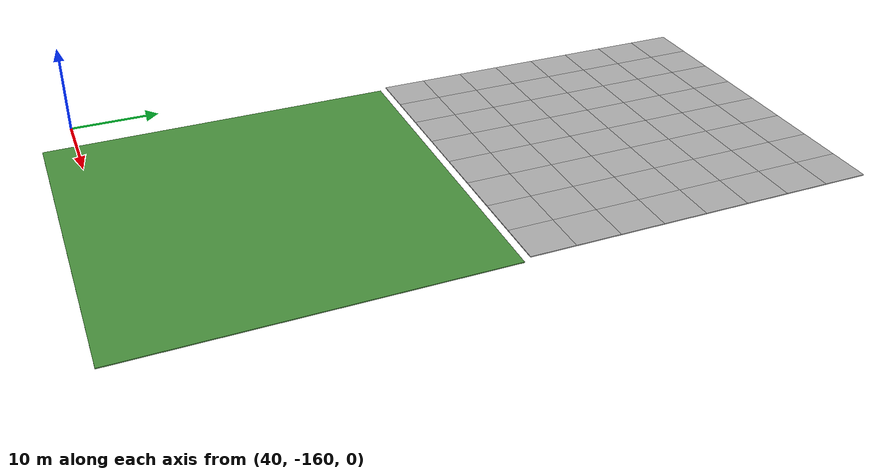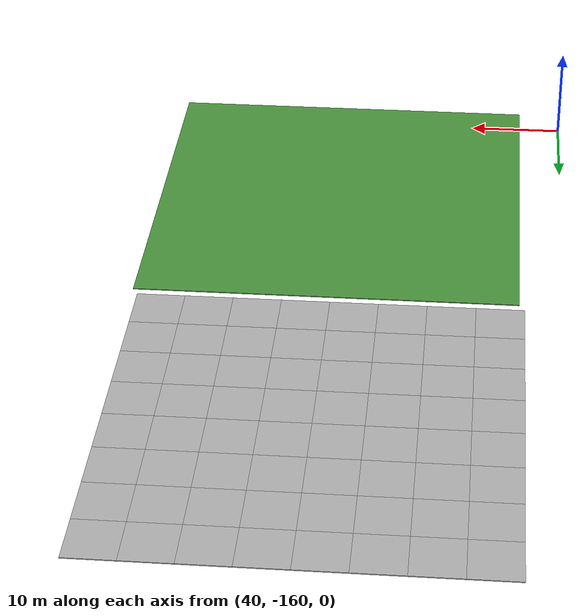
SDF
<sdf version="1.7">
 <world name="default">
  <model name="mud_plane_40x40_3">
   <model name="mud_plane_20x20">
    <model name="mud_plane">
     <static>1</static>
     <link name="link">
      <collision name="collision"><geometry><box><size>10 10 0.1</size></box></geometry></collision>
      <visual name="visual_1">
       <pose>-2.5 2.5 -0.05 0 -0 0</pose>
       <cast_shadows>0</cast_shadows>
       <geometry><box><size>5 5 0.1</size></box></geometry>
       <material>
        <script>
         <uri>model://mud_plane/materials/scripts</uri>
         <uri>model://mud_plane/materials/textures</uri>
         <name>vrc/mud</name>
        </script>
       </material>
      </visual>
      <visual name="visual_2">
       <pose>2.5 2.5 -0.05 0 -0 0</pose>
       <cast_shadows>0</cast_shadows>
       <geometry><box><size>5 5 0.1</size></box></geometry>
       <material>
        <script>
         <uri>model://mud_plane/materials/scripts</uri>
         <uri>model://mud_plane/materials/textures</uri>
         <name>vrc/mud</name>
        </script>
       </material>
      </visual>
      <visual name="visual_3">
       <pose>2.5 -2.5 -0.05 0 -0 0</pose>
       <cast_shadows>0</cast_shadows>
       <geometry><box><size>5 5 0.1</size></box></geometry>
       <material>
        <script>
         <uri>model://mud_plane/materials/scripts</uri>
         <uri>model://mud_plane/materials/textures</uri>
         <name>vrc/mud</name>
        </script>
       </material>
      </visual>
      <visual name="visual_4">
       <pose>-2.5 -2.5 -0.05 0 -0 0</pose>
       <cast_shadows>0</cast_shadows>
       <geometry><box><size>5 5 0.1</size></box></geometry>
       <material>
        <script>
         <uri>model://mud_plane/materials/scripts</uri>
         <uri>model://mud_plane/materials/textures</uri>
         <name>vrc/mud</name>
        </script>
       </material>
      </visual>
     </link>
     <pose>-4.99986 -4.99991 0 0 -0 0</pose>
    </model>
    <model name="mud_plane_0">
     <static>1</static>
     <link name="link">
      <collision name="collision"><geometry><box><size>10 10 0.1</size></box></geometry></collision>
      <visual name="visual_1">
       <pose>-2.5 2.5 -0.05 0 -0 0</pose>
       <cast_shadows>0</cast_shadows>
       <geometry><box><size>5 5 0.1</size></box></geometry>
       <material>
        <script>
         <uri>model://mud_plane/materials/scripts</uri>
         <uri>model://mud_plane/materials/textures</uri>
         <name>vrc/mud</name>
        </script>
       </material>
      </visual>
      <visual name="visual_2">
       <pose>2.5 2.5 -0.05 0 -0 0</pose>
       <cast_shadows>0</cast_shadows>
       <geometry><box><size>5 5 0.1</size></box></geometry>
       <material>
        <script>
         <uri>model://mud_plane/materials/scripts</uri>
         <uri>model://mud_plane/materials/textures</uri>
         <name>vrc/mud</name>
        </script>
       </material>
      </visual>
      <visual name="visual_3">
       <pose>2.5 -2.5 -0.05 0 -0 0</pose>
       <cast_shadows>0</cast_shadows>
       <geometry><box><size>5 5 0.1</size></box></geometry>
       <material>
        <script>
         <uri>model://mud_plane/materials/scripts</uri>
         <uri>model://mud_plane/materials/textures</uri>
         <name>vrc/mud</name>
        </script>
       </material>
      </visual>
      <visual name="visual_4">
       <pose>-2.5 -2.5 -0.05 0 -0 0</pose>
       <cast_shadows>0</cast_shadows>
       <geometry><box><size>5 5 0.1</size></box></geometry>
       <material>
        <script>
         <uri>model://mud_plane/materials/scripts</uri>
         <uri>model://mud_plane/materials/textures</uri>
         <name>vrc/mud</name>
        </script>
       </material>
      </visual>
     </link>
     <pose>-4.99946 4.99954 0 0 -0 0</pose>
    </model>
    <model name="mud_plane_1">
     <static>1</static>
     <link name="link">
      <collision name="collision"><geometry><box><size>10 10 0.1</size></box></geometry></collision>
      <visual name="visual_1">
       <pose>-2.5 2.5 -0.05 0 -0 0</pose>
       <cast_shadows>0</cast_shadows>
       <geometry><box><size>5 5 0.1</size></box></geometry>
       <material>
        <script>
         <uri>model://mud_plane/materials/scripts</uri>
         <uri>model://mud_plane/materials/textures</uri>
         <name>vrc/mud</name>
        </script>
       </material>
      </visual>
      <visual name="visual_2">
       <pose>2.5 2.5 -0.05 0 -0 0</pose>
       <cast_shadows>0</cast_shadows>
       <geometry><box><size>5 5 0.1</size></box></geometry>
       <material>
        <script>
         <uri>model://mud_plane/materials/scripts</uri>
         <uri>model://mud_plane/materials/textures</uri>
         <name>vrc/mud</name>
        </script>
       </material>
      </visual>
      <visual name="visual_3">
       <pose>2.5 -2.5 -0.05 0 -0 0</pose>
       <cast_shadows>0</cast_shadows>
       <geometry><box><size>5 5 0.1</size></box></geometry>
       <material>
        <script>
         <uri>model://mud_plane/materials/scripts</uri>
         <uri>model://mud_plane/materials/textures</uri>
         <name>vrc/mud</name>
        </script>
       </material>
      </visual>
      <visual name="visual_4">
       <pose>-2.5 -2.5 -0.05 0 -0 0</pose>
       <cast_shadows>0</cast_shadows>
       <geometry><box><size>5 5 0.1</size></box></geometry>
       <material>
        <script>
         <uri>model://mud_plane/materials/scripts</uri>
         <uri>model://mud_plane/materials/textures</uri>
         <name>vrc/mud</name>
        </script>
       </material>
      </visual>
     </link>
     <pose>4.99964 -4.99949 0 0 -0 0</pose>
    </model>
    <model name="mud_plane_2">
     <static>1</static>
     <link name="link">
      <collision name="collision"><geometry><box><size>10 10 0.1</size></box></geometry></collision>
      <visual name="visual_1">
       <pose>-2.5 2.5 -0.05 0 -0 0</pose>
       <cast_shadows>0</cast_shadows>
       <geometry><box><size>5 5 0.1</size></box></geometry>
       <material>
        <script>
         <uri>model://mud_plane/materials/scripts</uri>
         <uri>model://mud_plane/materials/textures</uri>
         <name>vrc/mud</name>
        </script>
       </material>
      </visual>
      <visual name="visual_2">
       <pose>2.5 2.5 -0.05 0 -0 0</pose>
       <cast_shadows>0</cast_shadows>
       <geometry><box><size>5 5 0.1</size></box></geometry>
       <material>
        <script>
         <uri>model://mud_plane/materials/scripts</uri>
         <uri>model://mud_plane/materials/textures</uri>
         <name>vrc/mud</name>
        </script>
       </material>
      </visual>
      <visual name="visual_3">
       <pose>2.5 -2.5 -0.05 0 -0 0</pose>
       <cast_shadows>0</cast_shadows>
       <geometry><box><size>5 5 0.1</size></box></geometry>
       <material>
        <script>
         <uri>model://mud_plane/materials/scripts</uri>
         <uri>model://mud_plane/materials/textures</uri>
         <name>vrc/mud</name>
        </script>
       </material>
      </visual>
      <visual name="visual_4">
       <pose>-2.5 -2.5 -0.05 0 -0 0</pose>
       <cast_shadows>0</cast_shadows>
       <geometry><box><size>5 5 0.1</size></box></geometry>
       <material>
        <script>
         <uri>model://mud_plane/materials/scripts</uri>
         <uri>model://mud_plane/materials/textures</uri>
         <name>vrc/mud</name>
        </script>
       </material>
      </visual>
     </link>
     <pose>4.99967 4.99986 0 0 -0 0</pose>
    </model>
    <static>0</static>
    <pose>-9.99895 9.99843 0 0 -0 0</pose>
   </model>
   <model name="mud_plane_20x20_0">
    <model name="mud_plane">
     <static>1</static>
     <link name="link">
      <collision name="collision"><geometry><box><size>10 10 0.1</size></box></geometry></collision>
      <visual name="visual_1">
       <pose>-2.5 2.5 -0.05 0 -0 0</pose>
       <cast_shadows>0</cast_shadows>
       <geometry><box><size>5 5 0.1</size></box></geometry>
       <material>
        <script>
         <uri>model://mud_plane/materials/scripts</uri>
         <uri>model://mud_plane/materials/textures</uri>
         <name>vrc/mud</name>
        </script>
       </material>
      </visual>
      <visual name="visual_2">
       <pose>2.5 2.5 -0.05 0 -0 0</pose>
       <cast_shadows>0</cast_shadows>
       <geometry><box><size>5 5 0.1</size></box></geometry>
       <material>
        <script>
         <uri>model://mud_plane/materials/scripts</uri>
         <uri>model://mud_plane/materials/textures</uri>
         <name>vrc/mud</name>
        </script>
       </material>
      </visual>
      <visual name="visual_3">
       <pose>2.5 -2.5 -0.05 0 -0 0</pose>
       <cast_shadows>0</cast_shadows>
       <geometry><box><size>5 5 0.1</size></box></geometry>
       <material>
        <script>
         <uri>model://mud_plane/materials/scripts</uri>
         <uri>model://mud_plane/materials/textures</uri>
         <name>vrc/mud</name>
        </script>
       </material>
      </visual>
      <visual name="visual_4">
       <pose>-2.5 -2.5 -0.05 0 -0 0</pose>
       <cast_shadows>0</cast_shadows>
       <geometry><box><size>5 5 0.1</size></box></geometry>
       <material>
        <script>
         <uri>model://mud_plane/materials/scripts</uri>
         <uri>model://mud_plane/materials/textures</uri>
         <name>vrc/mud</name>
        </script>
       </material>
      </visual>
     </link>
     <pose>-4.99986 -4.99991 0 0 -0 0</pose>
    </model>
    <model name="mud_plane_0">
     <static>1</static>
     <link name="link">
      <collision name="collision"><geometry><box><size>10 10 0.1</size></box></geometry></collision>
      <visual name="visual_1">
       <pose>-2.5 2.5 -0.05 0 -0 0</pose>
       <cast_shadows>0</cast_shadows>
       <geometry><box><size>5 5 0.1</size></box></geometry>
       <material>
        <script>
         <uri>model://mud_plane/materials/scripts</uri>
         <uri>model://mud_plane/materials/textures</uri>
         <name>vrc/mud</name>
        </script>
       </material>
      </visual>
      <visual name="visual_2">
       <pose>2.5 2.5 -0.05 0 -0 0</pose>
       <cast_shadows>0</cast_shadows>
       <geometry><box><size>5 5 0.1</size></box></geometry>
       <material>
        <script>
         <uri>model://mud_plane/materials/scripts</uri>
         <uri>model://mud_plane/materials/textures</uri>
         <name>vrc/mud</name>
        </script>
       </material>
      </visual>
      <visual name="visual_3">
       <pose>2.5 -2.5 -0.05 0 -0 0</pose>
       <cast_shadows>0</cast_shadows>
       <geometry><box><size>5 5 0.1</size></box></geometry>
       <material>
        <script>
         <uri>model://mud_plane/materials/scripts</uri>
         <uri>model://mud_plane/materials/textures</uri>
         <name>vrc/mud</name>
        </script>
       </material>
      </visual>
      <visual name="visual_4">
       <pose>-2.5 -2.5 -0.05 0 -0 0</pose>
       <cast_shadows>0</cast_shadows>
       <geometry><box><size>5 5 0.1</size></box></geometry>
       <material>
        <script>
         <uri>model://mud_plane/materials/scripts</uri>
         <uri>model://mud_plane/materials/textures</uri>
         <name>vrc/mud</name>
        </script>
       </material>
      </visual>
     </link>
     <pose>-4.99946 4.99954 0 0 -0 0</pose>
    </model>
    <model name="mud_plane_1">
     <static>1</static>
     <link name="link">
      <collision name="collision"><geometry><box><size>10 10 0.1</size></box></geometry></collision>
      <visual name="visual_1">
       <pose>-2.5 2.5 -0.05 0 -0 0</pose>
       <cast_shadows>0</cast_shadows>
       <geometry><box><size>5 5 0.1</size></box></geometry>
       <material>
        <script>
         <uri>model://mud_plane/materials/scripts</uri>
         <uri>model://mud_plane/materials/textures</uri>
         <name>vrc/mud</name>
        </script>
       </material>
      </visual>
      <visual name="visual_2">
       <pose>2.5 2.5 -0.05 0 -0 0</pose>
       <cast_shadows>0</cast_shadows>
       <geometry><box><size>5 5 0.1</size></box></geometry>
       <material>
        <script>
         <uri>model://mud_plane/materials/scripts</uri>
         <uri>model://mud_plane/materials/textures</uri>
         <name>vrc/mud</name>
        </script>
       </material>
      </visual>
      <visual name="visual_3">
       <pose>2.5 -2.5 -0.05 0 -0 0</pose>
       <cast_shadows>0</cast_shadows>
       <geometry><box><size>5 5 0.1</size></box></geometry>
       <material>
        <script>
         <uri>model://mud_plane/materials/scripts</uri>
         <uri>model://mud_plane/materials/textures</uri>
         <name>vrc/mud</name>
        </script>
       </material>
      </visual>
      <visual name="visual_4">
       <pose>-2.5 -2.5 -0.05 0 -0 0</pose>
       <cast_shadows>0</cast_shadows>
       <geometry><box><size>5 5 0.1</size></box></geometry>
       <material>
        <script>
         <uri>model://mud_plane/materials/scripts</uri>
         <uri>model://mud_plane/materials/textures</uri>
         <name>vrc/mud</name>
        </script>
       </material>
      </visual>
     </link>
     <pose>4.99964 -4.99949 0 0 -0 0</pose>
    </model>
    <model name="mud_plane_2">
     <static>1</static>
     <link name="link">
      <collision name="collision"><geometry><box><size>10 10 0.1</size></box></geometry></collision>
      <visual name="visual_1">
       <pose>-2.5 2.5 -0.05 0 -0 0</pose>
       <cast_shadows>0</cast_shadows>
       <geometry><box><size>5 5 0.1</size></box></geometry>
       <material>
        <script>
         <uri>model://mud_plane/materials/scripts</uri>
         <uri>model://mud_plane/materials/textures</uri>
         <name>vrc/mud</name>
        </script>
       </material>
      </visual>
      <visual name="visual_2">
       <pose>2.5 2.5 -0.05 0 -0 0</pose>
       <cast_shadows>0</cast_shadows>
       <geometry><box><size>5 5 0.1</size></box></geometry>
       <material>
        <script>
         <uri>model://mud_plane/materials/scripts</uri>
         <uri>model://mud_plane/materials/textures</uri>
         <name>vrc/mud</name>
        </script>
       </material>
      </visual>
      <visual name="visual_3">
       <pose>2.5 -2.5 -0.05 0 -0 0</pose>
       <cast_shadows>0</cast_shadows>
       <geometry><box><size>5 5 0.1</size></box></geometry>
       <material>
        <script>
         <uri>model://mud_plane/materials/scripts</uri>
         <uri>model://mud_plane/materials/textures</uri>
         <name>vrc/mud</name>
        </script>
       </material>
      </visual>
      <visual name="visual_4">
       <pose>-2.5 -2.5 -0.05 0 -0 0</pose>
       <cast_shadows>0</cast_shadows>
       <geometry><box><size>5 5 0.1</size></box></geometry>
       <material>
        <script>
         <uri>model://mud_plane/materials/scripts</uri>
         <uri>model://mud_plane/materials/textures</uri>
         <name>vrc/mud</name>
        </script>
       </material>
      </visual>
     </link>
     <pose>4.99967 4.99986 0 0 -0 0</pose>
    </model>
    <static>0</static>
    <pose>9.99933 9.9997 0 0 -0 0</pose>
   </model>
   <model name="mud_plane_20x20_1">
    <model name="mud_plane">
     <static>1</static>
     <link name="link">
      <collision name="collision"><geometry><box><size>10 10 0.1</size></box></geometry></collision>
      <visual name="visual_1">
       <pose>-2.5 2.5 -0.05 0 -0 0</pose>
       <cast_shadows>0</cast_shadows>
       <geometry><box><size>5 5 0.1</size></box></geometry>
       <material>
        <script>
         <uri>model://mud_plane/materials/scripts</uri>
         <uri>model://mud_plane/materials/textures</uri>
         <name>vrc/mud</name>
        </script>
       </material>
      </visual>
      <visual name="visual_2">
       <pose>2.5 2.5 -0.05 0 -0 0</pose>
       <cast_shadows>0</cast_shadows>
       <geometry><box><size>5 5 0.1</size></box></geometry>
       <material>
        <script>
         <uri>model://mud_plane/materials/scripts</uri>
         <uri>model://mud_plane/materials/textures</uri>
         <name>vrc/mud</name>
        </script>
       </material>
      </visual>
      <visual name="visual_3">
       <pose>2.5 -2.5 -0.05 0 -0 0</pose>
       <cast_shadows>0</cast_shadows>
       <geometry><box><size>5 5 0.1</size></box></geometry>
       <material>
        <script>
         <uri>model://mud_plane/materials/scripts</uri>
         <uri>model://mud_plane/materials/textures</uri>
         <name>vrc/mud</name>
        </script>
       </material>
      </visual>
      <visual name="visual_4">
       <pose>-2.5 -2.5 -0.05 0 -0 0</pose>
       <cast_shadows>0</cast_shadows>
       <geometry><box><size>5 5 0.1</size></box></geometry>
       <material>
        <script>
         <uri>model://mud_plane/materials/scripts</uri>
         <uri>model://mud_plane/materials/textures</uri>
         <name>vrc/mud</name>
        </script>
       </material>
      </visual>
     </link>
     <pose>-4.99986 -4.99991 0 0 -0 0</pose>
    </model>
    <model name="mud_plane_0">
     <static>1</static>
     <link name="link">
      <collision name="collision"><geometry><box><size>10 10 0.1</size></box></geometry></collision>
      <visual name="visual_1">
       <pose>-2.5 2.5 -0.05 0 -0 0</pose>
       <cast_shadows>0</cast_shadows>
       <geometry><box><size>5 5 0.1</size></box></geometry>
       <material>
        <script>
         <uri>model://mud_plane/materials/scripts</uri>
         <uri>model://mud_plane/materials/textures</uri>
         <name>vrc/mud</name>
        </script>
       </material>
      </visual>
      <visual name="visual_2">
       <pose>2.5 2.5 -0.05 0 -0 0</pose>
       <cast_shadows>0</cast_shadows>
       <geometry><box><size>5 5 0.1</size></box></geometry>
       <material>
        <script>
         <uri>model://mud_plane/materials/scripts</uri>
         <uri>model://mud_plane/materials/textures</uri>
         <name>vrc/mud</name>
        </script>
       </material>
      </visual>
      <visual name="visual_3">
       <pose>2.5 -2.5 -0.05 0 -0 0</pose>
       <cast_shadows>0</cast_shadows>
       <geometry><box><size>5 5 0.1</size></box></geometry>
       <material>
        <script>
         <uri>model://mud_plane/materials/scripts</uri>
         <uri>model://mud_plane/materials/textures</uri>
         <name>vrc/mud</name>
        </script>
       </material>
      </visual>
      <visual name="visual_4">
       <pose>-2.5 -2.5 -0.05 0 -0 0</pose>
       <cast_shadows>0</cast_shadows>
       <geometry><box><size>5 5 0.1</size></box></geometry>
       <material>
        <script>
         <uri>model://mud_plane/materials/scripts</uri>
         <uri>model://mud_plane/materials/textures</uri>
         <name>vrc/mud</name>
        </script>
       </material>
      </visual>
     </link>
     <pose>-4.99946 4.99954 0 0 -0 0</pose>
    </model>
    <model name="mud_plane_1">
     <static>1</static>
     <link name="link">
      <collision name="collision"><geometry><box><size>10 10 0.1</size></box></geometry></collision>
      <visual name="visual_1">
       <pose>-2.5 2.5 -0.05 0 -0 0</pose>
       <cast_shadows>0</cast_shadows>
       <geometry><box><size>5 5 0.1</size></box></geometry>
       <material>
        <script>
         <uri>model://mud_plane/materials/scripts</uri>
         <uri>model://mud_plane/materials/textures</uri>
         <name>vrc/mud</name>
        </script>
       </material>
      </visual>
      <visual name="visual_2">
       <pose>2.5 2.5 -0.05 0 -0 0</pose>
       <cast_shadows>0</cast_shadows>
       <geometry><box><size>5 5 0.1</size></box></geometry>
       <material>
        <script>
         <uri>model://mud_plane/materials/scripts</uri>
         <uri>model://mud_plane/materials/textures</uri>
         <name>vrc/mud</name>
        </script>
       </material>
      </visual>
      <visual name="visual_3">
       <pose>2.5 -2.5 -0.05 0 -0 0</pose>
       <cast_shadows>0</cast_shadows>
       <geometry><box><size>5 5 0.1</size></box></geometry>
       <material>
        <script>
         <uri>model://mud_plane/materials/scripts</uri>
         <uri>model://mud_plane/materials/textures</uri>
         <name>vrc/mud</name>
        </script>
       </material>
      </visual>
      <visual name="visual_4">
       <pose>-2.5 -2.5 -0.05 0 -0 0</pose>
       <cast_shadows>0</cast_shadows>
       <geometry><box><size>5 5 0.1</size></box></geometry>
       <material>
        <script>
         <uri>model://mud_plane/materials/scripts</uri>
         <uri>model://mud_plane/materials/textures</uri>
         <name>vrc/mud</name>
        </script>
       </material>
      </visual>
     </link>
     <pose>4.99964 -4.99949 0 0 -0 0</pose>
    </model>
    <model name="mud_plane_2">
     <static>1</static>
     <link name="link">
      <collision name="collision"><geometry><box><size>10 10 0.1</size></box></geometry></collision>
      <visual name="visual_1">
       <pose>-2.5 2.5 -0.05 0 -0 0</pose>
       <cast_shadows>0</cast_shadows>
       <geometry><box><size>5 5 0.1</size></box></geometry>
       <material>
        <script>
         <uri>model://mud_plane/materials/scripts</uri>
         <uri>model://mud_plane/materials/textures</uri>
         <name>vrc/mud</name>
        </script>
       </material>
      </visual>
      <visual name="visual_2">
       <pose>2.5 2.5 -0.05 0 -0 0</pose>
       <cast_shadows>0</cast_shadows>
       <geometry><box><size>5 5 0.1</size></box></geometry>
       <material>
        <script>
         <uri>model://mud_plane/materials/scripts</uri>
         <uri>model://mud_plane/materials/textures</uri>
         <name>vrc/mud</name>
        </script>
       </material>
      </visual>
      <visual name="visual_3">
       <pose>2.5 -2.5 -0.05 0 -0 0</pose>
       <cast_shadows>0</cast_shadows>
       <geometry><box><size>5 5 0.1</size></box></geometry>
       <material>
        <script>
         <uri>model://mud_plane/materials/scripts</uri>
         <uri>model://mud_plane/materials/textures</uri>
         <name>vrc/mud</name>
        </script>
       </material>
      </visual>
      <visual name="visual_4">
       <pose>-2.5 -2.5 -0.05 0 -0 0</pose>
       <cast_shadows>0</cast_shadows>
       <geometry><box><size>5 5 0.1</size></box></geometry>
       <material>
        <script>
         <uri>model://mud_plane/materials/scripts</uri>
         <uri>model://mud_plane/materials/textures</uri>
         <name>vrc/mud</name>
        </script>
       </material>
      </visual>
     </link>
     <pose>4.99967 4.99986 0 0 -0 0</pose>
    </model>
    <static>0</static>
    <pose>9.9993 -9.99877 0 0 -0 0</pose>
   </model>
   <model name="mud_plane_20x20_2">
    <model name="mud_plane">
     <static>1</static>
     <link name="link">
      <collision name="collision"><geometry><box><size>10 10 0.1</size></box></geometry></collision>
      <visual name="visual_1">
       <pose>-2.5 2.5 -0.05 0 -0 0</pose>
       <cast_shadows>0</cast_shadows>
       <geometry><box><size>5 5 0.1</size></box></geometry>
       <material>
        <script>
         <uri>model://mud_plane/materials/scripts</uri>
         <uri>model://mud_plane/materials/textures</uri>
         <name>vrc/mud</name>
        </script>
       </material>
      </visual>
      <visual name="visual_2">
       <pose>2.5 2.5 -0.05 0 -0 0</pose>
       <cast_shadows>0</cast_shadows>
       <geometry><box><size>5 5 0.1</size></box></geometry>
       <material>
        <script>
         <uri>model://mud_plane/materials/scripts</uri>
         <uri>model://mud_plane/materials/textures</uri>
         <name>vrc/mud</name>
        </script>
       </material>
      </visual>
      <visual name="visual_3">
       <pose>2.5 -2.5 -0.05 0 -0 0</pose>
       <cast_shadows>0</cast_shadows>
       <geometry><box><size>5 5 0.1</size></box></geometry>
       <material>
        <script>
         <uri>model://mud_plane/materials/scripts</uri>
         <uri>model://mud_plane/materials/textures</uri>
         <name>vrc/mud</name>
        </script>
       </material>
      </visual>
      <visual name="visual_4">
       <pose>-2.5 -2.5 -0.05 0 -0 0</pose>
       <cast_shadows>0</cast_shadows>
       <geometry><box><size>5 5 0.1</size></box></geometry>
       <material>
        <script>
         <uri>model://mud_plane/materials/scripts</uri>
         <uri>model://mud_plane/materials/textures</uri>
         <name>vrc/mud</name>
        </script>
       </material>
      </visual>
     </link>
     <pose>-4.99986 -4.99991 0 0 -0 0</pose>
    </model>
    <model name="mud_plane_0">
     <static>1</static>
     <link name="link">
      <collision name="collision"><geometry><box><size>10 10 0.1</size></box></geometry></collision>
      <visual name="visual_1">
       <pose>-2.5 2.5 -0.05 0 -0 0</pose>
       <cast_shadows>0</cast_shadows>
       <geometry><box><size>5 5 0.1</size></box></geometry>
       <material>
        <script>
         <uri>model://mud_plane/materials/scripts</uri>
         <uri>model://mud_plane/materials/textures</uri>
         <name>vrc/mud</name>
        </script>
       </material>
      </visual>
      <visual name="visual_2">
       <pose>2.5 2.5 -0.05 0 -0 0</pose>
       <cast_shadows>0</cast_shadows>
       <geometry><box><size>5 5 0.1</size></box></geometry>
       <material>
        <script>
         <uri>model://mud_plane/materials/scripts</uri>
         <uri>model://mud_plane/materials/textures</uri>
         <name>vrc/mud</name>
        </script>
       </material>
      </visual>
      <visual name="visual_3">
       <pose>2.5 -2.5 -0.05 0 -0 0</pose>
       <cast_shadows>0</cast_shadows>
       <geometry><box><size>5 5 0.1</size></box></geometry>
       <material>
        <script>
         <uri>model://mud_plane/materials/scripts</uri>
         <uri>model://mud_plane/materials/textures</uri>
         <name>vrc/mud</name>
        </script>
       </material>
      </visual>
      <visual name="visual_4">
       <pose>-2.5 -2.5 -0.05 0 -0 0</pose>
       <cast_shadows>0</cast_shadows>
       <geometry><box><size>5 5 0.1</size></box></geometry>
       <material>
        <script>
         <uri>model://mud_plane/materials/scripts</uri>
         <uri>model://mud_plane/materials/textures</uri>
         <name>vrc/mud</name>
        </script>
       </material>
      </visual>
     </link>
     <pose>-4.99946 4.99954 0 0 -0 0</pose>
    </model>
    <model name="mud_plane_1">
     <static>1</static>
     <link name="link">
      <collision name="collision"><geometry><box><size>10 10 0.1</size></box></geometry></collision>
      <visual name="visual_1">
       <pose>-2.5 2.5 -0.05 0 -0 0</pose>
       <cast_shadows>0</cast_shadows>
       <geometry><box><size>5 5 0.1</size></box></geometry>
       <material>
        <script>
         <uri>model://mud_plane/materials/scripts</uri>
         <uri>model://mud_plane/materials/textures</uri>
         <name>vrc/mud</name>
        </script>
       </material>
      </visual>
      <visual name="visual_2">
       <pose>2.5 2.5 -0.05 0 -0 0</pose>
       <cast_shadows>0</cast_shadows>
       <geometry><box><size>5 5 0.1</size></box></geometry>
       <material>
        <script>
         <uri>model://mud_plane/materials/scripts</uri>
         <uri>model://mud_plane/materials/textures</uri>
         <name>vrc/mud</name>
        </script>
       </material>
      </visual>
      <visual name="visual_3">
       <pose>2.5 -2.5 -0.05 0 -0 0</pose>
       <cast_shadows>0</cast_shadows>
       <geometry><box><size>5 5 0.1</size></box></geometry>
       <material>
        <script>
         <uri>model://mud_plane/materials/scripts</uri>
         <uri>model://mud_plane/materials/textures</uri>
         <name>vrc/mud</name>
        </script>
       </material>
      </visual>
      <visual name="visual_4">
       <pose>-2.5 -2.5 -0.05 0 -0 0</pose>
       <cast_shadows>0</cast_shadows>
       <geometry><box><size>5 5 0.1</size></box></geometry>
       <material>
        <script>
         <uri>model://mud_plane/materials/scripts</uri>
         <uri>model://mud_plane/materials/textures</uri>
         <name>vrc/mud</name>
        </script>
       </material>
      </visual>
     </link>
     <pose>4.99964 -4.99949 0 0 -0 0</pose>
    </model>
    <model name="mud_plane_2">
     <static>1</static>
     <link name="link">
      <collision name="collision"><geometry><box><size>10 10 0.1</size></box></geometry></collision>
      <visual name="visual_1">
       <pose>-2.5 2.5 -0.05 0 -0 0</pose>
       <cast_shadows>0</cast_shadows>
       <geometry><box><size>5 5 0.1</size></box></geometry>
       <material>
        <script>
         <uri>model://mud_plane/materials/scripts</uri>
         <uri>model://mud_plane/materials/textures</uri>
         <name>vrc/mud</name>
        </script>
       </material>
      </visual>
      <visual name="visual_2">
       <pose>2.5 2.5 -0.05 0 -0 0</pose>
       <cast_shadows>0</cast_shadows>
       <geometry><box><size>5 5 0.1</size></box></geometry>
       <material>
        <script>
         <uri>model://mud_plane/materials/scripts</uri>
         <uri>model://mud_plane/materials/textures</uri>
         <name>vrc/mud</name>
        </script>
       </material>
      </visual>
      <visual name="visual_3">
       <pose>2.5 -2.5 -0.05 0 -0 0</pose>
       <cast_shadows>0</cast_shadows>
       <geometry><box><size>5 5 0.1</size></box></geometry>
       <material>
        <script>
         <uri>model://mud_plane/materials/scripts</uri>
         <uri>model://mud_plane/materials/textures</uri>
         <name>vrc/mud</name>
        </script>
       </material>
      </visual>
      <visual name="visual_4">
       <pose>-2.5 -2.5 -0.05 0 -0 0</pose>
       <cast_shadows>0</cast_shadows>
       <geometry><box><size>5 5 0.1</size></box></geometry>
       <material>
        <script>
         <uri>model://mud_plane/materials/scripts</uri>
         <uri>model://mud_plane/materials/textures</uri>
         <name>vrc/mud</name>
        </script>
       </material>
      </visual>
     </link>
     <pose>4.99967 4.99986 0 0 -0 0</pose>
    </model>
    <static>0</static>
    <pose>-9.99969 -9.99935 0 0 -0 0</pose>
   </model>
   <static>0</static>
   <pose>63.9312 -102.777 0 0 -0 0</pose>
  </model>
  <model name="grass_plane_40x40_2">
   <pose>64.5131 -143.685 -0.05 0 -0 0</pose>
   <static>1</static>
   <link name="link">
    <collision name="collision"><geometry><box><size>40 40 0.1</size></box></geometry></collision>
    <visual name="grass">
     <cast_shadows>0</cast_shadows>
     <geometry><box><size>40 40 0.1</size></box></geometry>
     <material>
      <script><uri>file://media/materials/scripts/gazebo.material</uri><name>Gazebo/Grass</name></script>
     </material>
    </visual>
   </link>
  </model>
 </world>
</sdf>
